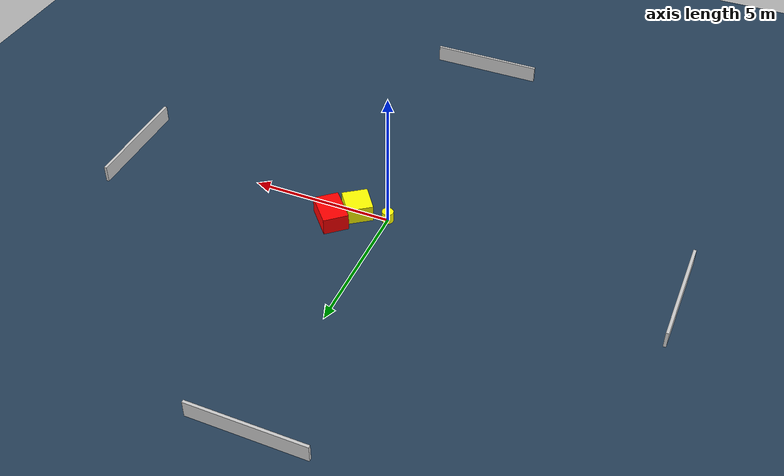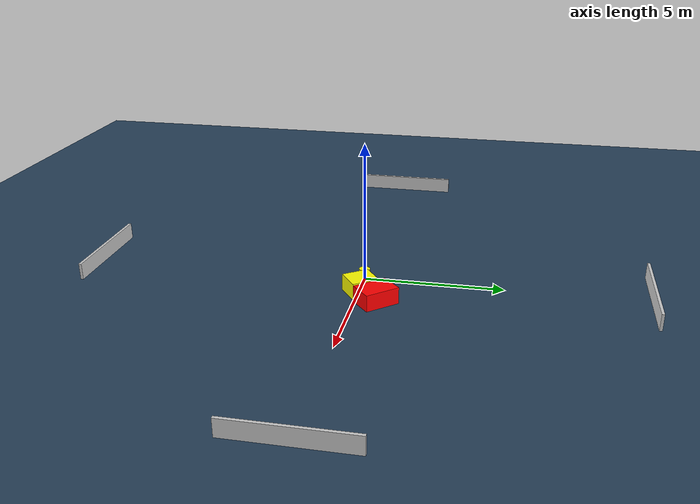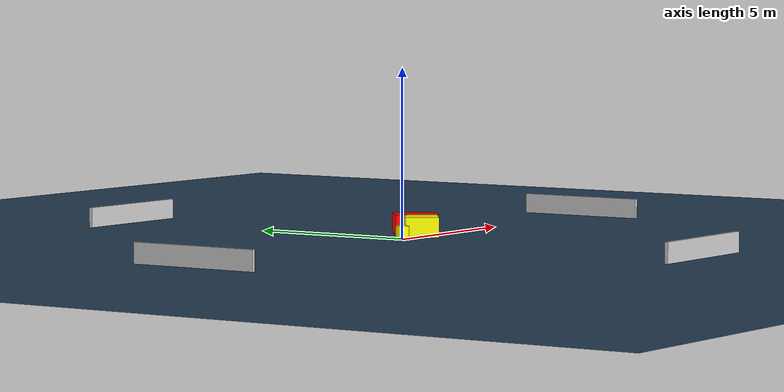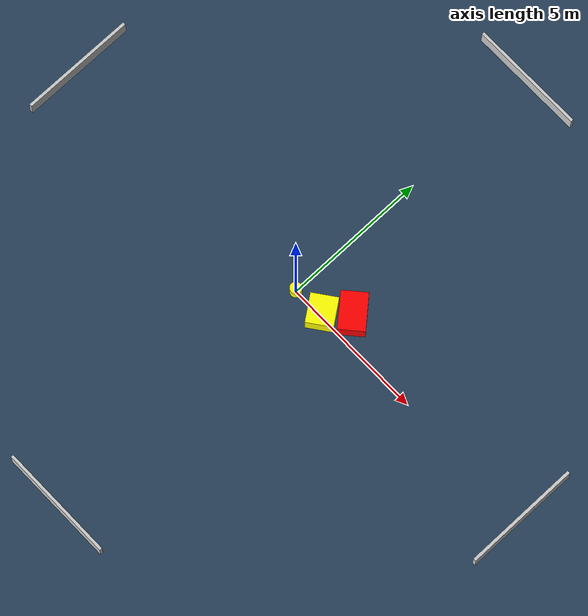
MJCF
<?xml version="1.0" ?>
<mujoco model="generated_environment">
  <option timestep="0.01" integrator="RK4" cone="elliptic"/>
  <default>
    <geom density="1"/>
  </default>
  <asset>
    <texture builtin="gradient" height="3072" name="skybox" rgb1="0.3 0.5 0.7" rgb2="0 0 0" type="skybox" width="512"/>
    <texture builtin="checker" height="300" name="groundplane" rgb1="0.2 0.3 0.4" rgb2="0.1 0.2 0.3" type="2d" width="300"/>
    <material name="groundplane" reflectance="0.2" texrepeat="5 5" texture="groundplane"/>
  </asset>
  <worldbody>
    <light dir="0 0 -1" directional="true" pos="0 0 1.5"/>
    <geom condim="3" friction="0.5 0.005 0.001" material="groundplane" name="floor" pos="0 0 0" size="0 0 0.05" type="plane"/>
    <body name="walls">
      <geom name="wall_1" condim="4" pos="-10.0 0.0 0.3" rgba="0.800000011920929 0.800000011920929 0.800000011920929 1.0" size="0.05 2.0 0.3" type="box"/>
      <geom name="wall_2" condim="4" pos="10.0 0.0 0.3" rgba="0.800000011920929 0.800000011920929 0.800000011920929 1.0" size="0.05 2.0 0.3" type="box"/>
      <geom name="wall_3" condim="4" pos="0.0 -10.0 0.3" rgba="0.800000011920929 0.800000011920929 0.800000011920929 1.0" size="2.0 0.05 0.3" type="box"/>
      <geom name="wall_4" condim="4" pos="0.0 10.0 0.3" rgba="0.800000011920929 0.800000011920929 0.800000011920929 1.0" size="2.0 0.05 0.3" type="box"/>
    </body>
    <body name="robot">
      <joint name="joint_x" type="slide" pos="0 0 0" axis="1 0 0"/>
      <joint name="joint_y" type="slide" pos="0 0 0" axis="0 1 0"/>
      <geom name="robot" type="cylinder" pos="0.0 0.0 0.2" size="0.2 0.2 0.0" mass="5.0" friction="1.0 0.005 0.0001" condim="4" rgba="1.0 1.0 0.0 1.0"/>
    </body>
    <body name="obstacle_1_movable">
      <geom name="obstacle_1_movable" condim="4" pos="1.105289134139413 0.06541421609443195 0.3" euler="0 0 126.25675171941147" friction="0.0 0.005 0.001" rgba="1.0 1.0 0.0 1.0" size="0.49055423102877216 0.4523086262365695 0.3" type="box" mass="0.1"/>
      <joint type="free"/>
    </body>
    <body name="obstacle_2_static">
      <geom name="obstacle_2_static" condim="4" pos="1.788442568430359 0.7405743663231634 0.3" euler="0 0 311.3939460393669" friction="0.0 0.005 0.001" rgba="1.0 0.0 0.0 1.0" size="0.6338086573685042 0.4423125759774156 0.3" type="box"/>
    </body>
  </worldbody>
  <actuator>
    <motor name="actuator_x" joint="joint_x" gear="1" ctrlrange="-1 1"/>
    <motor name="actuator_y" joint="joint_y" gear="1" ctrlrange="-1 1"/>
  </actuator>
</mujoco>
